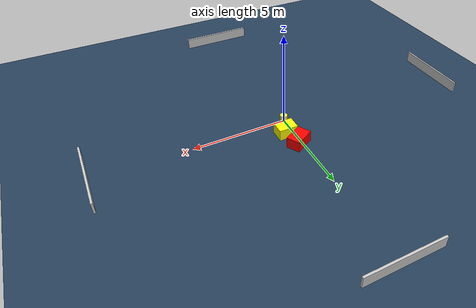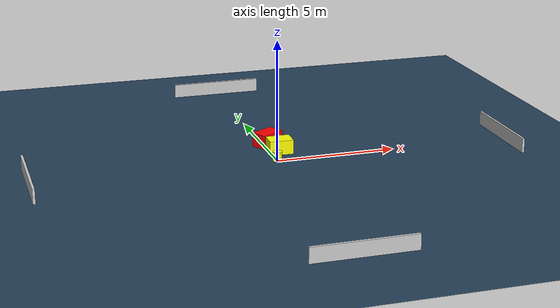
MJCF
<?xml version="1.0" ?>
<mujoco model="generated_environment">
  <option timestep="0.01" integrator="RK4" cone="elliptic"/>
  <default>
    <geom density="1"/>
  </default>
  <asset>
    <texture builtin="gradient" height="3072" name="skybox" rgb1="0.3 0.5 0.7" rgb2="0 0 0" type="skybox" width="512"/>
    <texture builtin="checker" height="300" name="groundplane" rgb1="0.2 0.3 0.4" rgb2="0.1 0.2 0.3" type="2d" width="300"/>
    <material name="groundplane" reflectance="0.2" texrepeat="5 5" texture="groundplane"/>
  </asset>
  <worldbody>
    <light dir="0 0 -1" directional="true" pos="0 0 1.5"/>
    <geom condim="3" friction="0.5 0.005 0.001" material="groundplane" name="floor" pos="0 0 0" size="0 0 0.05" type="plane"/>
    <body name="walls">
      <geom name="wall_1" condim="4" pos="-10.0 0.0 0.3" rgba="0.800000011920929 0.800000011920929 0.800000011920929 1.0" size="0.05 2.0 0.3" type="box"/>
      <geom name="wall_2" condim="4" pos="10.0 0.0 0.3" rgba="0.800000011920929 0.800000011920929 0.800000011920929 1.0" size="0.05 2.0 0.3" type="box"/>
      <geom name="wall_3" condim="4" pos="0.0 -10.0 0.3" rgba="0.800000011920929 0.800000011920929 0.800000011920929 1.0" size="2.0 0.05 0.3" type="box"/>
      <geom name="wall_4" condim="4" pos="0.0 10.0 0.3" rgba="0.800000011920929 0.800000011920929 0.800000011920929 1.0" size="2.0 0.05 0.3" type="box"/>
    </body>
    <body name="robot">
      <joint name="joint_x" type="slide" pos="0 0 0" axis="1 0 0"/>
      <joint name="joint_y" type="slide" pos="0 0 0" axis="0 1 0"/>
      <geom name="robot" type="cylinder" pos="0.0 0.0 0.2" size="0.2 0.2 0.0" mass="5.0" friction="1.0 0.005 0.0001" condim="4" rgba="1.0 1.0 0.0 1.0"/>
    </body>
    <body name="obstacle_1_movable">
      <geom name="obstacle_1_movable" condim="4" pos="0.3985780806248488 0.9966469743137232 0.3" euler="0 0 89.16180708930325" friction="0.0 0.005 0.001" rgba="1.0 1.0 0.0 1.0" size="0.3707059624437753 0.5022698440565581 0.3" type="box" mass="0.1"/>
      <joint type="free"/>
    </body>
    <body name="obstacle_2_static">
      <geom name="obstacle_2_static" condim="4" pos="0.18345026651331273 1.991107156593294 0.3" euler="0 0 29.800645906026247" friction="0.0 0.005 0.001" rgba="1.0 0.0 0.0 1.0" size="0.5389359205927396 0.36268932838893064 0.3" type="box"/>
    </body>
  </worldbody>
  <actuator>
    <motor name="actuator_x" joint="joint_x" gear="1" ctrlrange="-1 1"/>
    <motor name="actuator_y" joint="joint_y" gear="1" ctrlrange="-1 1"/>
  </actuator>
</mujoco>
